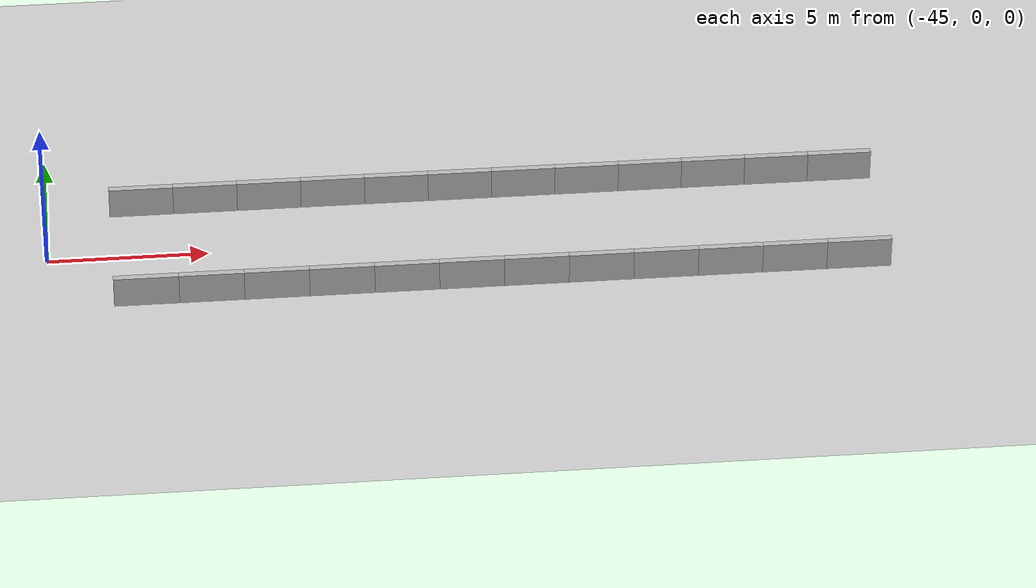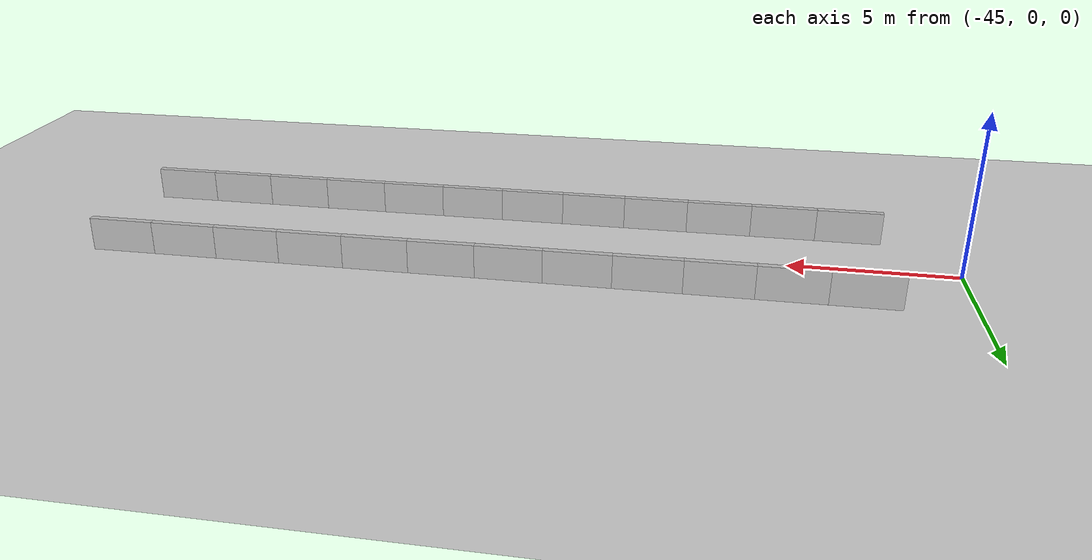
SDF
<sdf version="1.6">
 <world name="default">
  <model name="ground_plane">
   <static>1</static>
   <link name="link">
    <collision name="collision">
     <geometry><plane><normal>0 0 1</normal><size>100 100</size></plane></geometry>
     <surface>
      <contact><collide_bitmask>65535</collide_bitmask></contact>
      <friction><ode><mu>100</mu><mu2>50</mu2></ode></friction>
     </surface>
    </collision>
    <visual name="visual">
     <cast_shadows>0</cast_shadows>
     <geometry><plane><normal>0 0 1</normal><size>100 100</size></plane></geometry>
     <material>
      <script><uri>file://media/materials/scripts/gazebo.material</uri><name>Gazebo/Grey</name></script>
     </material>
    </visual>
   </link>
  </model>
  <model name="Color Tutorial Model_clone_4_clone_clone_3_clone_2_clone_1_clone_1_clone">
   <static>1</static>
   <link name="grating">
    <collision name="body_collision"><geometry><box><size>2 0.2 2</size></box></geometry></collision>
    <visual name="body_visual">
     <geometry><box><size>2 0.2 2</size></box></geometry>
     <material>
      <script>
       <uri>/home/neuro/.gazebo/models/grating_wall/materials/scripts/</uri>
       <uri>/home/neuro/.gazebo/models/grating_wall/materials/scripts/</uri>
       <name>RepeatedTexture</name>
      </script>
     </material>
    </visual>
   </link>
   <pose>-20 -2.25 0 0 0 -3.14159</pose>
  </model>
  <model name="Color Tutorial Model_clone_4_clone_clone_3_clone_2_clone_1_clone_1_clone_0">
   <static>1</static>
   <link name="grating">
    <collision name="body_collision"><geometry><box><size>2 0.2 2</size></box></geometry></collision>
    <visual name="body_visual">
     <geometry><box><size>2 0.2 2</size></box></geometry>
     <material>
      <script>
       <uri>/home/neuro/.gazebo/models/grating_wall/materials/scripts/</uri>
       <uri>/home/neuro/.gazebo/models/grating_wall/materials/scripts/</uri>
       <name>RepeatedTexture</name>
      </script>
     </material>
    </visual>
   </link>
   <pose>-20 2.25 0 0 0 -3.14159</pose>
  </model>
  <model name="Color Tutorial Model_clone_4_clone_clone_3_clone_2_clone_1_clone_1_clone_1">
   <static>1</static>
   <link name="grating">
    <collision name="body_collision"><geometry><box><size>2 0.2 2</size></box></geometry></collision>
    <visual name="body_visual">
     <geometry><box><size>2 0.2 2</size></box></geometry>
     <material>
      <script>
       <uri>/home/neuro/.gazebo/models/grating_wall/materials/scripts/</uri>
       <uri>/home/neuro/.gazebo/models/grating_wall/materials/scripts/</uri>
       <name>RepeatedTexture</name>
      </script>
     </material>
    </visual>
   </link>
   <pose>-22 -2.25 0 0 0 -3.14159</pose>
  </model>
  <model name="Color Tutorial Model_clone_4_clone_clone_3_clone_2_clone_1_clone_1_clone_2">
   <static>1</static>
   <link name="grating">
    <collision name="body_collision"><geometry><box><size>2 0.2 2</size></box></geometry></collision>
    <visual name="body_visual">
     <geometry><box><size>2 0.2 2</size></box></geometry>
     <material>
      <script>
       <uri>/home/neuro/.gazebo/models/grating_wall/materials/scripts/</uri>
       <uri>/home/neuro/.gazebo/models/grating_wall/materials/scripts/</uri>
       <name>RepeatedTexture</name>
      </script>
     </material>
    </visual>
   </link>
   <pose>-22 2.25 0 0 0 -3.14159</pose>
  </model>
  <model name="Color Tutorial Model_clone_4_clone_clone_3_clone_2_clone_1_clone_1_clone_1_clone">
   <static>1</static>
   <link name="grating">
    <collision name="body_collision"><geometry><box><size>2 0.2 2</size></box></geometry></collision>
    <visual name="body_visual">
     <geometry><box><size>2 0.2 2</size></box></geometry>
     <material>
      <script>
       <uri>/home/neuro/.gazebo/models/grating_wall/materials/scripts/</uri>
       <uri>/home/neuro/.gazebo/models/grating_wall/materials/scripts/</uri>
       <name>RepeatedTexture</name>
      </script>
     </material>
    </visual>
   </link>
   <pose>-24 -2.25 0 0 0 -3.14159</pose>
  </model>
  <model name="Color Tutorial Model_clone_4_clone_clone_3_clone_2_clone_1_clone_1_clone_1_clone_0">
   <static>1</static>
   <link name="grating">
    <collision name="body_collision"><geometry><box><size>2 0.2 2</size></box></geometry></collision>
    <visual name="body_visual">
     <geometry><box><size>2 0.2 2</size></box></geometry>
     <material>
      <script>
       <uri>/home/neuro/.gazebo/models/grating_wall/materials/scripts/</uri>
       <uri>/home/neuro/.gazebo/models/grating_wall/materials/scripts/</uri>
       <name>RepeatedTexture</name>
      </script>
     </material>
    </visual>
   </link>
   <pose>-24 2.25 0 0 0 -3.14159</pose>
  </model>
  <model name="Color Tutorial Model_clone_4_clone_clone_3_clone_2_clone_1_clone_1_clone_1_clone_1">
   <static>1</static>
   <link name="grating">
    <collision name="body_collision"><geometry><box><size>2 0.2 2</size></box></geometry></collision>
    <visual name="body_visual">
     <geometry><box><size>2 0.2 2</size></box></geometry>
     <material>
      <script>
       <uri>/home/neuro/.gazebo/models/grating_wall/materials/scripts/</uri>
       <uri>/home/neuro/.gazebo/models/grating_wall/materials/scripts/</uri>
       <name>RepeatedTexture</name>
      </script>
     </material>
    </visual>
   </link>
   <pose>-26 -2.25 0 0 0 -3.14159</pose>
  </model>
  <model name="Color Tutorial Model_clone_4_clone_clone_3_clone_2_clone_1_clone_1_clone_1_clone_2">
   <static>1</static>
   <link name="grating">
    <collision name="body_collision"><geometry><box><size>2 0.2 2</size></box></geometry></collision>
    <visual name="body_visual">
     <geometry><box><size>2 0.2 2</size></box></geometry>
     <material>
      <script>
       <uri>/home/neuro/.gazebo/models/grating_wall/materials/scripts/</uri>
       <uri>/home/neuro/.gazebo/models/grating_wall/materials/scripts/</uri>
       <name>RepeatedTexture</name>
      </script>
     </material>
    </visual>
   </link>
   <pose>-26 2.25 0 0 0 -3.14159</pose>
  </model>
  <model name="Color Tutorial Model_clone_4_clone_clone_3_clone_2_clone_1_clone_1_clone_1_clone_1_clone">
   <static>1</static>
   <link name="grating">
    <collision name="body_collision"><geometry><box><size>2 0.2 2</size></box></geometry></collision>
    <visual name="body_visual">
     <geometry><box><size>2 0.2 2</size></box></geometry>
     <material>
      <script>
       <uri>/home/neuro/.gazebo/models/grating_wall/materials/scripts/</uri>
       <uri>/home/neuro/.gazebo/models/grating_wall/materials/scripts/</uri>
       <name>RepeatedTexture</name>
      </script>
     </material>
    </visual>
   </link>
   <pose>-28 -2.25 0 0 0 -3.14159</pose>
  </model>
  <model name="Color Tutorial Model_clone_4_clone_clone_3_clone_2_clone_1_clone_1_clone_1_clone_1_clone_0">
   <static>1</static>
   <link name="grating">
    <collision name="body_collision"><geometry><box><size>2 0.2 2</size></box></geometry></collision>
    <visual name="body_visual">
     <geometry><box><size>2 0.2 2</size></box></geometry>
     <material>
      <script>
       <uri>/home/neuro/.gazebo/models/grating_wall/materials/scripts/</uri>
       <uri>/home/neuro/.gazebo/models/grating_wall/materials/scripts/</uri>
       <name>RepeatedTexture</name>
      </script>
     </material>
    </visual>
   </link>
   <pose>-28 2.25 0 0 0 -3.14159</pose>
  </model>
  <model name="Color Tutorial Model_clone_4_clone_clone_3_clone_2_clone_1_clone_1_clone_1_clone_1_clone_1">
   <static>1</static>
   <link name="grating">
    <collision name="body_collision"><geometry><box><size>2 0.2 2</size></box></geometry></collision>
    <visual name="body_visual">
     <geometry><box><size>2 0.2 2</size></box></geometry>
     <material>
      <script>
       <uri>/home/neuro/.gazebo/models/grating_wall/materials/scripts/</uri>
       <uri>/home/neuro/.gazebo/models/grating_wall/materials/scripts/</uri>
       <name>RepeatedTexture</name>
      </script>
     </material>
    </visual>
   </link>
   <pose>-30 2.25 0 0 0 -3.14159</pose>
  </model>
  <model name="Color Tutorial Model_clone_4_clone_clone_3_clone_2_clone_1_clone_1_clone_1_clone_1_clone_2">
   <static>1</static>
   <link name="grating">
    <collision name="body_collision"><geometry><box><size>2 0.2 2</size></box></geometry></collision>
    <visual name="body_visual">
     <geometry><box><size>2 0.2 2</size></box></geometry>
     <material>
      <script>
       <uri>/home/neuro/.gazebo/models/grating_wall/materials/scripts/</uri>
       <uri>/home/neuro/.gazebo/models/grating_wall/materials/scripts/</uri>
       <name>RepeatedTexture</name>
      </script>
     </material>
    </visual>
   </link>
   <pose>-30 -2.25 0 0 0 -3.14159</pose>
  </model>
  <model name="Color Tutorial Model_clone_4_clone_clone_3_clone_2_clone_1_clone_1_clone_1_clone_1_clone_2_clone">
   <static>1</static>
   <link name="grating">
    <collision name="body_collision"><geometry><box><size>2 0.2 2</size></box></geometry></collision>
    <visual name="body_visual">
     <geometry><box><size>2 0.2 2</size></box></geometry>
     <material>
      <script>
       <uri>/home/neuro/.gazebo/models/grating_wall/materials/scripts/</uri>
       <uri>/home/neuro/.gazebo/models/grating_wall/materials/scripts/</uri>
       <name>RepeatedTexture</name>
      </script>
     </material>
    </visual>
   </link>
   <pose>-32 -2.25 0 0 0 -3.14159</pose>
  </model>
  <model name="Color Tutorial Model_clone_4_clone_clone_3_clone_2_clone_1_clone_1_clone_1_clone_1_clone_2_clone_0">
   <static>1</static>
   <link name="grating">
    <collision name="body_collision"><geometry><box><size>2 0.2 2</size></box></geometry></collision>
    <visual name="body_visual">
     <geometry><box><size>2 0.2 2</size></box></geometry>
     <material>
      <script>
       <uri>/home/neuro/.gazebo/models/grating_wall/materials/scripts/</uri>
       <uri>/home/neuro/.gazebo/models/grating_wall/materials/scripts/</uri>
       <name>RepeatedTexture</name>
      </script>
     </material>
    </visual>
   </link>
   <pose>-32 2.25 0 0 0 -3.14159</pose>
  </model>
  <model name="Color Tutorial Model_clone_4_clone_clone_3_clone_2_clone_1_clone_1_clone_1_clone_1_clone_2_clone_1">
   <static>1</static>
   <link name="grating">
    <collision name="body_collision"><geometry><box><size>2 0.2 2</size></box></geometry></collision>
    <visual name="body_visual">
     <geometry><box><size>2 0.2 2</size></box></geometry>
     <material>
      <script>
       <uri>/home/neuro/.gazebo/models/grating_wall/materials/scripts/</uri>
       <uri>/home/neuro/.gazebo/models/grating_wall/materials/scripts/</uri>
       <name>RepeatedTexture</name>
      </script>
     </material>
    </visual>
   </link>
   <pose>-34 -2.25 0 0 0 -3.14159</pose>
  </model>
  <model name="Color Tutorial Model_clone_4_clone_clone_3_clone_2_clone_1_clone_1_clone_1_clone_1_clone_2_clone_2">
   <static>1</static>
   <link name="grating">
    <collision name="body_collision"><geometry><box><size>2 0.2 2</size></box></geometry></collision>
    <visual name="body_visual">
     <geometry><box><size>2 0.2 2</size></box></geometry>
     <material>
      <script>
       <uri>/home/neuro/.gazebo/models/grating_wall/materials/scripts/</uri>
       <uri>/home/neuro/.gazebo/models/grating_wall/materials/scripts/</uri>
       <name>RepeatedTexture</name>
      </script>
     </material>
    </visual>
   </link>
   <pose>-34 2.25 0 0 0 -3.14159</pose>
  </model>
  <model name="Color Tutorial Model_clone_4_clone_clone_3_clone_2_clone_1_clone_1_clone_1_clone_1_clone_2_clone_1_clone">
   <static>1</static>
   <link name="grating">
    <collision name="body_collision"><geometry><box><size>2 0.2 2</size></box></geometry></collision>
    <visual name="body_visual">
     <geometry><box><size>2 0.2 2</size></box></geometry>
     <material>
      <script>
       <uri>/home/neuro/.gazebo/models/grating_wall/materials/scripts/</uri>
       <uri>/home/neuro/.gazebo/models/grating_wall/materials/scripts/</uri>
       <name>RepeatedTexture</name>
      </script>
     </material>
    </visual>
   </link>
   <pose>-36 -2.25 0 0 0 -3.14159</pose>
  </model>
  <model name="Color Tutorial Model_clone_4_clone_clone_3_clone_2_clone_1_clone_1_clone_1_clone_1_clone_2_clone_1_clone_0">
   <static>1</static>
   <link name="grating">
    <collision name="body_collision"><geometry><box><size>2 0.2 2</size></box></geometry></collision>
    <visual name="body_visual">
     <geometry><box><size>2 0.2 2</size></box></geometry>
     <material>
      <script>
       <uri>/home/neuro/.gazebo/models/grating_wall/materials/scripts/</uri>
       <uri>/home/neuro/.gazebo/models/grating_wall/materials/scripts/</uri>
       <name>RepeatedTexture</name>
      </script>
     </material>
    </visual>
   </link>
   <pose>-36 2.25 0 0 0 -3.14159</pose>
  </model>
  <model name="Color Tutorial Model_clone_4_clone_clone_3_clone_2_clone_1_clone_1_clone_1_clone_1_clone_2_clone_1_clone_1">
   <static>1</static>
   <link name="grating">
    <collision name="body_collision"><geometry><box><size>2 0.2 2</size></box></geometry></collision>
    <visual name="body_visual">
     <geometry><box><size>2 0.2 2</size></box></geometry>
     <material>
      <script>
       <uri>/home/neuro/.gazebo/models/grating_wall/materials/scripts/</uri>
       <uri>/home/neuro/.gazebo/models/grating_wall/materials/scripts/</uri>
       <name>RepeatedTexture</name>
      </script>
     </material>
    </visual>
   </link>
   <pose>-38 -2.25 0 0 0 -3.14159</pose>
  </model>
  <model name="Color Tutorial Model_clone_4_clone_clone_3_clone_2_clone_1_clone_1_clone_1_clone_1_clone_2_clone_1_clone_2">
   <static>1</static>
   <link name="grating">
    <collision name="body_collision"><geometry><box><size>2 0.2 2</size></box></geometry></collision>
    <visual name="body_visual">
     <geometry><box><size>2 0.2 2</size></box></geometry>
     <material>
      <script>
       <uri>/home/neuro/.gazebo/models/grating_wall/materials/scripts/</uri>
       <uri>/home/neuro/.gazebo/models/grating_wall/materials/scripts/</uri>
       <name>RepeatedTexture</name>
      </script>
     </material>
    </visual>
   </link>
   <pose>-38 2.25 0 0 0 -3.14159</pose>
  </model>
  <model name="Color Tutorial Model_clone_4_clone_clone_3_clone_2_clone_1_clone_1_clone_1_clone_1_clone_2_clone_1_clone_clone">
   <static>1</static>
   <link name="grating">
    <collision name="body_collision"><geometry><box><size>2 0.2 2</size></box></geometry></collision>
    <visual name="body_visual">
     <geometry><box><size>2 0.2 2</size></box></geometry>
     <material>
      <script>
       <uri>/home/neuro/.gazebo/models/grating_wall/materials/scripts/</uri>
       <uri>/home/neuro/.gazebo/models/grating_wall/materials/scripts/</uri>
       <name>RepeatedTexture</name>
      </script>
     </material>
    </visual>
   </link>
   <pose>-40 -2.25 0 0 0 -3.14159</pose>
  </model>
  <model name="Color Tutorial Model_clone_4_clone_clone_3_clone_2_clone_1_clone_1_clone_1_clone_1_clone_2_clone_1_clone_clone_0">
   <static>1</static>
   <link name="grating">
    <collision name="body_collision"><geometry><box><size>2 0.2 2</size></box></geometry></collision>
    <visual name="body_visual">
     <geometry><box><size>2 0.2 2</size></box></geometry>
     <material>
      <script>
       <uri>/home/neuro/.gazebo/models/grating_wall/materials/scripts/</uri>
       <uri>/home/neuro/.gazebo/models/grating_wall/materials/scripts/</uri>
       <name>RepeatedTexture</name>
      </script>
     </material>
    </visual>
   </link>
   <pose>-40 2.25 0 0 0 -3.14159</pose>
  </model>
  <model name="Color Tutorial Model_clone_4_clone_clone_3_clone_2_clone_1_clone_1_clone_1_clone_1_clone_2_clone_1_clone_clone_1">
   <static>1</static>
   <link name="grating">
    <collision name="body_collision"><geometry><box><size>2 0.2 2</size></box></geometry></collision>
    <visual name="body_visual">
     <geometry><box><size>2 0.2 2</size></box></geometry>
     <material>
      <script>
       <uri>/home/neuro/.gazebo/models/grating_wall/materials/scripts/</uri>
       <uri>/home/neuro/.gazebo/models/grating_wall/materials/scripts/</uri>
       <name>RepeatedTexture</name>
      </script>
     </material>
    </visual>
   </link>
   <pose>-42 -2.25 0 0 0 -3.14159</pose>
  </model>
  <model name="Color Tutorial Model_clone_4_clone_clone_3_clone_2_clone_1_clone_1_clone_1_clone_1_clone_2_clone_1_clone_clone_2">
   <static>1</static>
   <link name="grating">
    <collision name="body_collision"><geometry><box><size>2 0.2 2</size></box></geometry></collision>
    <visual name="body_visual">
     <geometry><box><size>2 0.2 2</size></box></geometry>
     <material>
      <script>
       <uri>/home/neuro/.gazebo/models/grating_wall/materials/scripts/</uri>
       <uri>/home/neuro/.gazebo/models/grating_wall/materials/scripts/</uri>
       <name>RepeatedTexture</name>
      </script>
     </material>
    </visual>
   </link>
   <pose>-42 2.25 0 0 0 -3.14159</pose>
  </model>
 </world>
</sdf>
